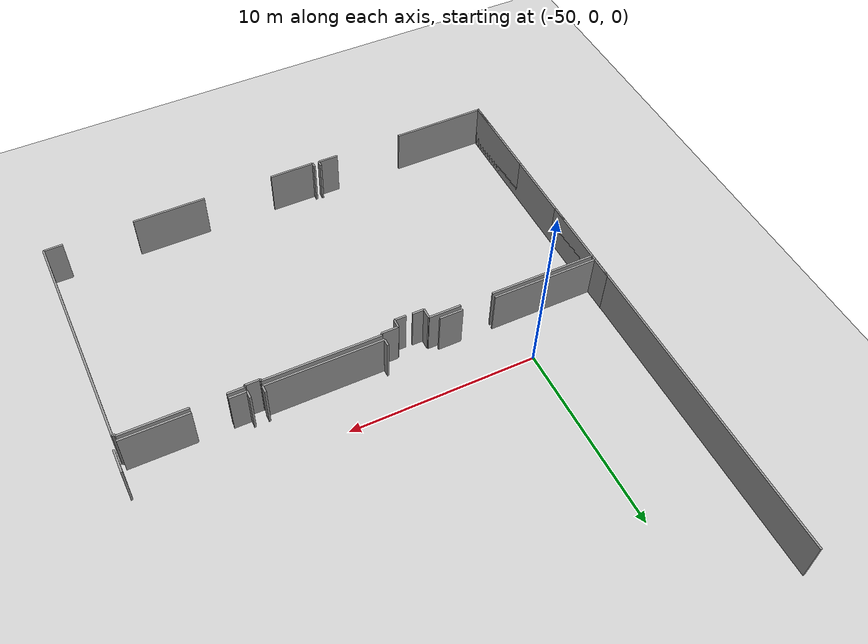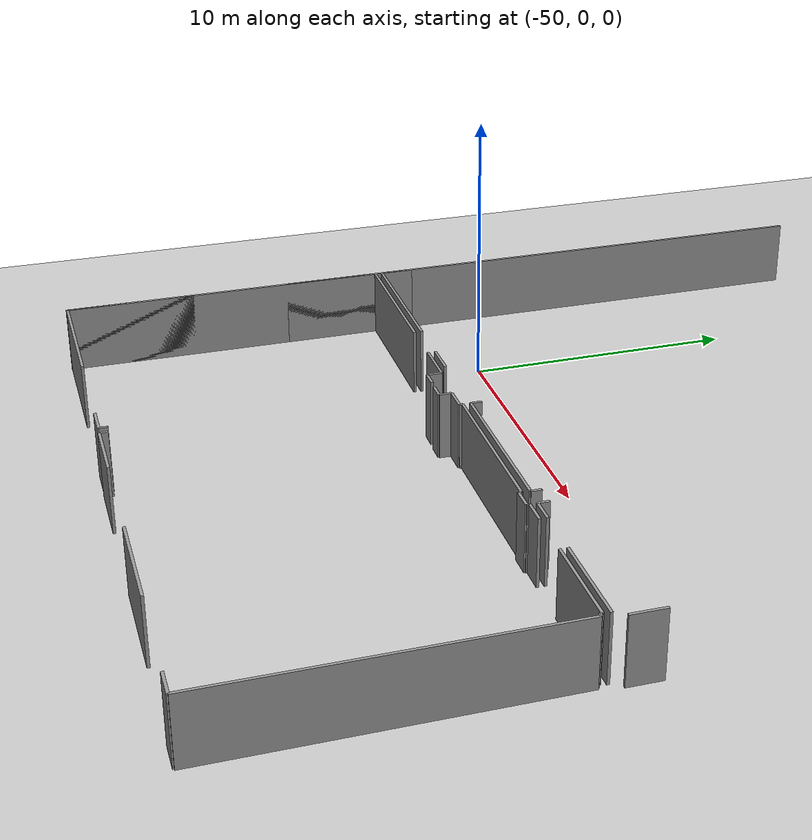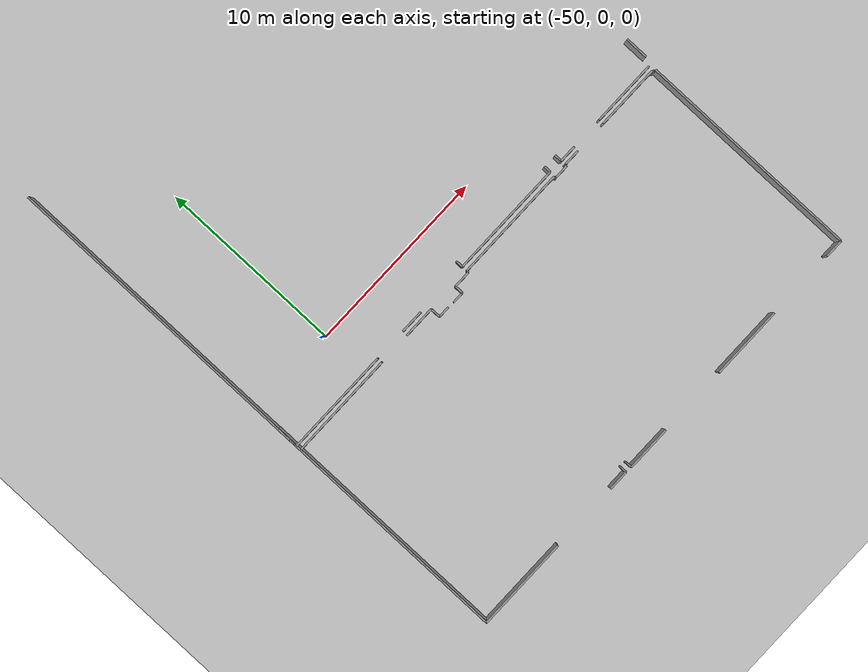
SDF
<sdf version="1.6">
 <world name="default">
  <model name="ground_plane">
   <static>1</static>
   <link name="link">
    <collision name="collision">
     <geometry><plane><normal>0 0 1</normal><size>100 100</size></plane></geometry>
     <surface><friction><ode><mu>100</mu><mu2>50</mu2></ode></friction></surface>
    </collision>
    <visual name="visual">
     <cast_shadows>0</cast_shadows>
     <geometry><plane><normal>0 0 1</normal><size>100 100</size></plane></geometry>
     <material>
      <script><uri>file://media/materials/scripts/gazebo.material</uri><name>Gazebo/Grey</name></script>
     </material>
    </visual>
   </link>
  </model>
  <model name="50056458">
   <static>1</static>
   <link name="Wall_21">
    <collision name="Wall_21_Collision">
     <geometry><box><size>0.998754944227 0.1 2.5</size></box></geometry>
     <pose>0.499377472113 0 1.25 0 0 0</pose>
    </collision>
    <visual name="Wall_21_Visual">
     <pose>0.499377472113 0 1.25 0 0 0</pose>
     <geometry><box><size>0.998754944227 0.1 2.5</size></box></geometry>
     <material>
      <script><uri>file://media/materials/scripts/gazebo.material</uri><name>Gazebo/Grey</name></script>
      <ambient>1 1 1 1</ambient>
     </material>
    </visual>
    <pose>24.9619283966 -30.0209203249 0 0 0 3.14159265359</pose>
   </link>
   <link name="Wall_22">
    <collision name="Wall_22_Collision">
     <geometry><box><size>3.88813131527 0.1 2.5</size></box></geometry>
     <pose>1.94406565764 0 1.25 0 0 0</pose>
    </collision>
    <visual name="Wall_22_Visual">
     <pose>1.94406565764 0 1.25 0 0 0</pose>
     <geometry><box><size>3.88813131527 0.1 2.5</size></box></geometry>
     <material>
      <script><uri>file://media/materials/scripts/gazebo.material</uri><name>Gazebo/Grey</name></script>
      <ambient>1 1 1 1</ambient>
     </material>
    </visual>
    <pose>20.2512132941 -30.0209203249 0 0 0 3.14159265359</pose>
   </link>
   <link name="Wall_23">
    <collision name="Wall_23_Collision">
     <geometry><box><size>2.43099257201 0.1 2.5</size></box></geometry>
     <pose>1.21549628601 0 1.25 0 0 0</pose>
    </collision>
    <visual name="Wall_23_Visual">
     <pose>1.21549628601 0 1.25 0 0 0</pose>
     <geometry><box><size>2.43099257201 0.1 2.5</size></box></geometry>
     <material>
      <script><uri>file://media/materials/scripts/gazebo.material</uri><name>Gazebo/Grey</name></script>
      <ambient>1 1 1 1</ambient>
     </material>
    </visual>
    <pose>12.6082647988 -30.0209203249 0 0 0 3.14159265359</pose>
   </link>
   <link name="Wall_24">
    <collision name="Wall_24_Collision">
     <geometry><box><size>0.296950036843 0.1 2.5</size></box></geometry>
     <pose>0.148475018422 0 1.25 0 0 0</pose>
    </collision>
    <visual name="Wall_24_Visual">
     <pose>0.148475018422 0 1.25 0 0 0</pose>
     <geometry><box><size>0.296950036843 0.1 2.5</size></box></geometry>
     <material>
      <script><uri>file://media/materials/scripts/gazebo.material</uri><name>Gazebo/Grey</name></script>
      <ambient>1 1 1 1</ambient>
     </material>
    </visual>
    <pose>10.1772722268 -30.0209203249 0 0 0 1.57079632679</pose>
   </link>
   <link name="Wall_25">
    <collision name="Wall_25_Collision">
     <geometry><box><size>0.616937840379 0.1 2.5</size></box></geometry>
     <pose>0.308468920189 0 1.25 0 0 0</pose>
    </collision>
    <visual name="Wall_25_Visual">
     <pose>0.308468920189 0 1.25 0 0 0</pose>
     <geometry><box><size>0.616937840379 0.1 2.5</size></box></geometry>
     <material>
      <script><uri>file://media/materials/scripts/gazebo.material</uri><name>Gazebo/Grey</name></script>
      <ambient>1 1 1 1</ambient>
     </material>
    </visual>
    <pose>10.1772722268 -18.4005691684 0 0 0 0.0</pose>
   </link>
   <link name="Wall_26">
    <collision name="Wall_26_Collision">
     <geometry><box><size>0.456689845596 0.1 2.5</size></box></geometry>
     <pose>0.228344922798 0 1.25 0 0 0</pose>
    </collision>
    <visual name="Wall_26_Visual">
     <pose>0.228344922798 0 1.25 0 0 0</pose>
     <geometry><box><size>0.456689845596 0.1 2.5</size></box></geometry>
     <material>
      <script><uri>file://media/materials/scripts/gazebo.material</uri><name>Gazebo/Grey</name></script>
      <ambient>1 1 1 1</ambient>
     </material>
    </visual>
    <pose>10.7942100672 -18.4005691684 0 0 0 1.57079632679</pose>
   </link>
   <link name="Wall_27">
    <collision name="Wall_27_Collision">
     <geometry><box><size>0.913210295849 0.1 2.5</size></box></geometry>
     <pose>0.456605147924 0 1.25 0 0 0</pose>
    </collision>
    <visual name="Wall_27_Visual">
     <pose>0.456605147924 0 1.25 0 0 0</pose>
     <geometry><box><size>0.913210295849 0.1 2.5</size></box></geometry>
     <material>
      <script><uri>file://media/materials/scripts/gazebo.material</uri><name>Gazebo/Grey</name></script>
      <ambient>1 1 1 1</ambient>
     </material>
    </visual>
    <pose>10.7942100672 -17.9438793228 0 0 0 0.0</pose>
   </link>
   <link name="Wall_28">
    <collision name="Wall_28_Collision">
     <geometry><box><size>0.111292740563 0.1 2.5</size></box></geometry>
     <pose>0.0556463702813 0 1.25 0 0 0</pose>
    </collision>
    <visual name="Wall_28_Visual">
     <pose>0.0556463702813 0 1.25 0 0 0</pose>
     <geometry><box><size>0.111292740563 0.1 2.5</size></box></geometry>
     <material>
      <script><uri>file://media/materials/scripts/gazebo.material</uri><name>Gazebo/Grey</name></script>
      <ambient>1 1 1 1</ambient>
     </material>
    </visual>
    <pose>11.707420363 -17.9438793228 0 0 0 1.57079632679</pose>
   </link>
   <link name="Wall_29">
    <collision name="Wall_29_Collision">
     <geometry><box><size>6.16954779913 0.1 2.5</size></box></geometry>
     <pose>3.08477389957 0 1.25 0 0 0</pose>
    </collision>
    <visual name="Wall_29_Visual">
     <pose>3.08477389957 0 1.25 0 0 0</pose>
     <geometry><box><size>6.16954779913 0.1 2.5</size></box></geometry>
     <material>
      <script><uri>file://media/materials/scripts/gazebo.material</uri><name>Gazebo/Grey</name></script>
      <ambient>1 1 1 1</ambient>
     </material>
    </visual>
    <pose>11.707420363 -17.8325865822 0 0 0 0.0</pose>
   </link>
   <link name="Wall_30">
    <collision name="Wall_30_Collision">
     <geometry><box><size>0.0948613922603 0.1 2.5</size></box></geometry>
     <pose>0.0474306961302 0 1.25 0 0 0</pose>
    </collision>
    <visual name="Wall_30_Visual">
     <pose>0.0474306961302 0 1.25 0 0 0</pose>
     <geometry><box><size>0.0948613922603 0.1 2.5</size></box></geometry>
     <material>
      <script><uri>file://media/materials/scripts/gazebo.material</uri><name>Gazebo/Grey</name></script>
      <ambient>1 1 1 1</ambient>
     </material>
    </visual>
    <pose>17.8769681621 -17.8325865822 0 0 0 -1.57079632679</pose>
   </link>
   <link name="Wall_31">
    <collision name="Wall_31_Collision">
     <geometry><box><size>0.774814300355 0.1 2.5</size></box></geometry>
     <pose>0.387407150177 0 1.25 0 0 0</pose>
    </collision>
    <visual name="Wall_31_Visual">
     <pose>0.387407150177 0 1.25 0 0 0</pose>
     <geometry><box><size>0.774814300355 0.1 2.5</size></box></geometry>
     <material>
      <script><uri>file://media/materials/scripts/gazebo.material</uri><name>Gazebo/Grey</name></script>
      <ambient>1 1 1 1</ambient>
     </material>
    </visual>
    <pose>17.8769681621 -17.9274479745 0 0 0 0.0</pose>
   </link>
   <link name="Wall_32">
    <collision name="Wall_32_Collision">
     <geometry><box><size>0.0968941363802 0.1 2.5</size></box></geometry>
     <pose>0.0484470681901 0 1.25 0 0 0</pose>
    </collision>
    <visual name="Wall_32_Visual">
     <pose>0.0484470681901 0 1.25 0 0 0</pose>
     <geometry><box><size>0.0968941363802 0.1 2.5</size></box></geometry>
     <material>
      <script><uri>file://media/materials/scripts/gazebo.material</uri><name>Gazebo/Grey</name></script>
      <ambient>1 1 1 1</ambient>
     </material>
    </visual>
    <pose>18.6517824625 -17.9274479745 0 0 0 1.57079632679</pose>
   </link>
   <link name="Wall_33">
    <collision name="Wall_33_Collision">
     <geometry><box><size>0.900675040443 0.1 2.5</size></box></geometry>
     <pose>0.450337520222 0 1.25 0 0 0</pose>
    </collision>
    <visual name="Wall_33_Visual">
     <pose>0.450337520222 0 1.25 0 0 0</pose>
     <geometry><box><size>0.900675040443 0.1 2.5</size></box></geometry>
     <material>
      <script><uri>file://media/materials/scripts/gazebo.material</uri><name>Gazebo/Grey</name></script>
      <ambient>1 1 1 1</ambient>
     </material>
    </visual>
    <pose>18.6517824625 -17.8305538381 0 0 0 0.0</pose>
   </link>
   <link name="Wall_34">
    <collision name="Wall_34_Collision">
     <geometry><box><size>3.47124937535 0.1 2.5</size></box></geometry>
     <pose>1.73562468768 0 1.25 0 0 0</pose>
    </collision>
    <visual name="Wall_34_Visual">
     <pose>1.73562468768 0 1.25 0 0 0</pose>
     <geometry><box><size>3.47124937535 0.1 2.5</size></box></geometry>
     <material>
      <script><uri>file://media/materials/scripts/gazebo.material</uri><name>Gazebo/Grey</name></script>
      <ambient>1 1 1 1</ambient>
     </material>
    </visual>
    <pose>21.3283982823 -17.8305538381 0 0 0 0.0</pose>
   </link>
   <link name="Wall_35">
    <collision name="Wall_35_Collision">
     <geometry><box><size>0.0858834390643 0.1 2.5</size></box></geometry>
     <pose>0.0429417195321 0 1.25 0 0 0</pose>
    </collision>
    <visual name="Wall_35_Visual">
     <pose>0.0429417195321 0 1.25 0 0 0</pose>
     <geometry><box><size>0.0858834390643 0.1 2.5</size></box></geometry>
     <material>
      <script><uri>file://media/materials/scripts/gazebo.material</uri><name>Gazebo/Grey</name></script>
      <ambient>1 1 1 1</ambient>
     </material>
    </visual>
    <pose>24.7996476577 -17.8305538381 0 0 0 -1.57079632679</pose>
   </link>
   <link name="Wall_36">
    <collision name="Wall_36_Collision">
     <geometry><box><size>0.126030135432 0.1 2.5</size></box></geometry>
     <pose>0.0630150677158 0 1.25 0 0 0</pose>
    </collision>
    <visual name="Wall_36_Visual">
     <pose>0.0630150677158 0 1.25 0 0 0</pose>
     <geometry><box><size>0.126030135432 0.1 2.5</size></box></geometry>
     <material>
      <script><uri>file://media/materials/scripts/gazebo.material</uri><name>Gazebo/Grey</name></script>
      <ambient>1 1 1 1</ambient>
     </material>
    </visual>
    <pose>24.7996476577 -17.9164372771 0 0 0 0.0</pose>
   </link>
   <link name="Wall_37">
    <collision name="Wall_37_Collision">
     <geometry><box><size>12.1045373294 0.1 2.5</size></box></geometry>
     <pose>6.05226866472 0 1.25 0 0 0</pose>
    </collision>
    <visual name="Wall_37_Visual">
     <pose>6.05226866472 0 1.25 0 0 0</pose>
     <geometry><box><size>12.1045373294 0.1 2.5</size></box></geometry>
     <material>
      <script><uri>file://media/materials/scripts/gazebo.material</uri><name>Gazebo/Grey</name></script>
      <ambient>1 1 1 1</ambient>
     </material>
    </visual>
    <pose>24.9256777931 -17.9164372771 0 0 0 -1.56780152768</pose>
   </link>
   <link name="Wall_38">
    <collision name="Wall_38_Collision">
     <geometry><box><size>1.08972024359 0.1 2.5</size></box></geometry>
     <pose>0.544860121795 0 1.25 0 0 0</pose>
    </collision>
    <visual name="Wall_38_Visual">
     <pose>0.544860121795 0 1.25 0 0 0</pose>
     <geometry><box><size>1.08972024359 0.1 2.5</size></box></geometry>
     <material>
      <script><uri>file://media/materials/scripts/gazebo.material</uri><name>Gazebo/Grey</name></script>
      <ambient>1 1 1 1</ambient>
     </material>
    </visual>
    <pose>9.82848721489 -29.9951722327 0 0 0 3.14159265359</pose>
   </link>
   <link name="Wall_39">
    <collision name="Wall_39_Collision">
     <geometry><box><size>5.02460467362 0.1 2.5</size></box></geometry>
     <pose>2.51230233681 0 1.25 0 0 0</pose>
    </collision>
    <visual name="Wall_39_Visual">
     <pose>2.51230233681 0 1.25 0 0 0</pose>
     <geometry><box><size>5.02460467362 0.1 2.5</size></box></geometry>
     <material>
      <script><uri>file://media/materials/scripts/gazebo.material</uri><name>Gazebo/Grey</name></script>
      <ambient>1 1 1 1</ambient>
     </material>
    </visual>
    <pose>5.02460467362 -29.9951722327 0 0 0 3.14159265359</pose>
   </link>
   <link name="Wall_40">
    <collision name="Wall_40_Collision">
     <geometry><box><size>4.83386551704 0.1 2.5</size></box></geometry>
     <pose>2.41693275852 0 1.25 0 0 0</pose>
    </collision>
    <visual name="Wall_40_Visual">
     <pose>2.41693275852 0 1.25 0 0 0</pose>
     <geometry><box><size>4.83386551704 0.1 2.5</size></box></geometry>
     <material>
      <script><uri>file://media/materials/scripts/gazebo.material</uri><name>Gazebo/Grey</name></script>
      <ambient>1 1 1 1</ambient>
     </material>
    </visual>
    <pose>0.0 -29.9951722327 0 0 0 1.57079632679</pose>
   </link>
   <link name="Wall_41">
    <collision name="Wall_41_Collision">
     <geometry><box><size>3.61896211473 0.1 2.5</size></box></geometry>
     <pose>1.80948105737 0 1.25 0 0 0</pose>
    </collision>
    <visual name="Wall_41_Visual">
     <pose>1.80948105737 0 1.25 0 0 0</pose>
     <geometry><box><size>3.61896211473 0.1 2.5</size></box></geometry>
     <material>
      <script><uri>file://media/materials/scripts/gazebo.material</uri><name>Gazebo/Grey</name></script>
      <ambient>1 1 1 1</ambient>
     </material>
    </visual>
    <pose>0.0 -21.4495159528 0 0 0 1.57079632679</pose>
   </link>
   <link name="Wall_42">
    <collision name="Wall_42_Collision">
     <geometry><box><size>5.73166083664 0.1 2.5</size></box></geometry>
     <pose>2.86583041832 0 1.25 0 0 0</pose>
    </collision>
    <visual name="Wall_42_Visual">
     <pose>2.86583041832 0 1.25 0 0 0</pose>
     <geometry><box><size>5.73166083664 0.1 2.5</size></box></geometry>
     <material>
      <script><uri>file://media/materials/scripts/gazebo.material</uri><name>Gazebo/Grey</name></script>
      <ambient>1 1 1 1</ambient>
     </material>
    </visual>
    <pose>0.0 -17.8305538381 0 0 0 0.0</pose>
   </link>
   <link name="Wall_43">
    <collision name="Wall_43_Collision">
     <geometry><box><size>1.72647733914 0.1 2.5</size></box></geometry>
     <pose>0.863238669569 0 1.25 0 0 0</pose>
    </collision>
    <visual name="Wall_43_Visual">
     <pose>0.863238669569 0 1.25 0 0 0</pose>
     <geometry><box><size>1.72647733914 0.1 2.5</size></box></geometry>
     <material>
      <script><uri>file://media/materials/scripts/gazebo.material</uri><name>Gazebo/Grey</name></script>
      <ambient>1 1 1 1</ambient>
     </material>
    </visual>
    <pose>7.48608840743 -17.8305538381 0 0 0 0.0</pose>
   </link>
   <link name="Wall_44">
    <collision name="Wall_44_Collision">
     <geometry><box><size>0.540709935884 0.1 2.5</size></box></geometry>
     <pose>0.270354967942 0 1.25 0 0 0</pose>
    </collision>
    <visual name="Wall_44_Visual">
     <pose>0.270354967942 0 1.25 0 0 0</pose>
     <geometry><box><size>0.540709935884 0.1 2.5</size></box></geometry>
     <material>
      <script><uri>file://media/materials/scripts/gazebo.material</uri><name>Gazebo/Grey</name></script>
      <ambient>1 1 1 1</ambient>
     </material>
    </visual>
    <pose>9.21256574657 -17.8305538381 0 0 0 -1.57079632679</pose>
   </link>
   <link name="Wall_45">
    <collision name="Wall_45_Collision">
     <geometry><box><size>0.621003328618 0.1 2.5</size></box></geometry>
     <pose>0.310501664309 0 1.25 0 0 0</pose>
    </collision>
    <visual name="Wall_45_Visual">
     <pose>0.310501664309 0 1.25 0 0 0</pose>
     <geometry><box><size>0.621003328618 0.1 2.5</size></box></geometry>
     <material>
      <script><uri>file://media/materials/scripts/gazebo.material</uri><name>Gazebo/Grey</name></script>
      <ambient>1 1 1 1</ambient>
     </material>
    </visual>
    <pose>9.21256574657 -18.371263774 0 0 0 0.0</pose>
   </link>
   <link name="Wall_46">
    <collision name="Wall_46_Collision">
     <geometry><box><size>0.313253213647 0.1 2.5</size></box></geometry>
     <pose>0.156626606823 0 1.25 0 0 0</pose>
    </collision>
    <visual name="Wall_46_Visual">
     <pose>0.156626606823 0 1.25 0 0 0</pose>
     <geometry><box><size>0.313253213647 0.1 2.5</size></box></geometry>
     <material>
      <script><uri>file://media/materials/scripts/gazebo.material</uri><name>Gazebo/Grey</name></script>
      <ambient>1 1 1 1</ambient>
     </material>
    </visual>
    <pose>9.83356907519 -29.6819602429 0 0 0 -1.58701988976</pose>
   </link>
   <link name="Wall_47">
    <collision name="Wall_47_Collision">
     <geometry><box><size>3.50614481608 0.1 2.5</size></box></geometry>
     <pose>1.75307240804 0 1.25 0 0 0</pose>
    </collision>
    <visual name="Wall_47_Visual">
     <pose>1.75307240804 0 1.25 0 0 0</pose>
     <geometry><box><size>3.50614481608 0.1 2.5</size></box></geometry>
     <material>
      <script><uri>file://media/materials/scripts/gazebo.material</uri><name>Gazebo/Grey</name></script>
      <ambient>1 1 1 1</ambient>
     </material>
    </visual>
    <pose>24.8406413308 -17.569007428 0 0 0 3.14159265359</pose>
   </link>
   <link name="Wall_48">
    <collision name="Wall_48_Collision">
     <geometry><box><size>0.922188249045 0.1 2.5</size></box></geometry>
     <pose>0.461094124523 0 1.25 0 0 0</pose>
    </collision>
    <visual name="Wall_48_Visual">
     <pose>0.461094124523 0 1.25 0 0 0</pose>
     <geometry><box><size>0.922188249045 0.1 2.5</size></box></geometry>
     <material>
      <script><uri>file://media/materials/scripts/gazebo.material</uri><name>Gazebo/Grey</name></script>
      <ambient>1 1 1 1</ambient>
     </material>
    </visual>
    <pose>19.5736319209 -17.569007428 0 0 0 3.14159265359</pose>
   </link>
   <link name="Wall_49">
    <collision name="Wall_49_Collision">
     <geometry><box><size>0.410275521526 0.1 2.5</size></box></geometry>
     <pose>0.205137760763 0 1.25 0 0 0</pose>
    </collision>
    <visual name="Wall_49_Visual">
     <pose>0.205137760763 0 1.25 0 0 0</pose>
     <geometry><box><size>0.410275521526 0.1 2.5</size></box></geometry>
     <material>
      <script><uri>file://media/materials/scripts/gazebo.material</uri><name>Gazebo/Grey</name></script>
      <ambient>1 1 1 1</ambient>
     </material>
    </visual>
    <pose>18.6514436718 -17.569007428 0 0 0 1.57079632679</pose>
   </link>
   <link name="Wall_51">
    <collision name="Wall_51_Collision">
     <geometry><box><size>0.384188638654 0.1 2.5</size></box></geometry>
     <pose>0.192094319327 0 1.25 0 0 0</pose>
    </collision>
    <visual name="Wall_51_Visual">
     <pose>0.192094319327 0 1.25 0 0 0</pose>
     <geometry><box><size>0.384188638654 0.1 2.5</size></box></geometry>
     <material>
      <script><uri>file://media/materials/scripts/gazebo.material</uri><name>Gazebo/Grey</name></script>
      <ambient>1 1 1 1</ambient>
     </material>
    </visual>
    <pose>17.908475696 -17.1587319065 0 0 0 -1.57079632679</pose>
   </link>
   <link name="Wall_52">
    <collision name="Wall_52_Collision">
     <geometry><box><size>6.19936137956 0.1 2.5</size></box></geometry>
     <pose>3.09968068978 0 1.25 0 0 0</pose>
    </collision>
    <visual name="Wall_52_Visual">
     <pose>3.09968068978 0 1.25 0 0 0</pose>
     <geometry><box><size>6.19936137956 0.1 2.5</size></box></geometry>
     <material>
      <script><uri>file://media/materials/scripts/gazebo.material</uri><name>Gazebo/Grey</name></script>
      <ambient>1 1 1 1</ambient>
     </material>
    </visual>
    <pose>17.908475696 -17.5429205451 0 0 0 3.14159265359</pose>
   </link>
   <link name="Wall_53">
    <collision name="Wall_53_Collision">
     <geometry><box><size>0.397062684747 0.1 2.5</size></box></geometry>
     <pose>0.198531342373 0 1.25 0 0 0</pose>
    </collision>
    <visual name="Wall_53_Visual">
     <pose>0.198531342373 0 1.25 0 0 0</pose>
     <geometry><box><size>0.397062684747 0.1 2.5</size></box></geometry>
     <material>
      <script><uri>file://media/materials/scripts/gazebo.material</uri><name>Gazebo/Grey</name></script>
      <ambient>1 1 1 1</ambient>
     </material>
    </visual>
    <pose>11.7091143164 -17.5429205451 0 0 0 1.57079632679</pose>
   </link>
   <link name="Wall_58">
    <collision name="Wall_58_Collision">
     <geometry><box><size>1.25911558691 0.1 2.5</size></box></geometry>
     <pose>0.629557793456 0 1.25 0 0 0</pose>
    </collision>
    <visual name="Wall_58_Visual">
     <pose>0.629557793456 0 1.25 0 0 0</pose>
     <geometry><box><size>1.25911558691 0.1 2.5</size></box></geometry>
     <material>
      <script><uri>file://media/materials/scripts/gazebo.material</uri><name>Gazebo/Grey</name></script>
      <ambient>1 1 1 1</ambient>
     </material>
    </visual>
    <pose>8.76315990073 -17.5593518934 0 0 0 3.14159265359</pose>
   </link>
   <link name="Wall_59">
    <collision name="Wall_59_Collision">
     <geometry><box><size>5.72742595306 0.1 2.5</size></box></geometry>
     <pose>2.86371297653 0 1.25 0 0 0</pose>
    </collision>
    <visual name="Wall_59_Visual">
     <pose>2.86371297653 0 1.25 0 0 0</pose>
     <geometry><box><size>5.72742595306 0.1 2.5</size></box></geometry>
     <material>
      <script><uri>file://media/materials/scripts/gazebo.material</uri><name>Gazebo/Grey</name></script>
      <ambient>1 1 1 1</ambient>
     </material>
    </visual>
    <pose>5.73742027832 -17.5593518934 0 0 0 3.14159265359</pose>
   </link>
   <link name="Wall_60">
    <collision name="Wall_60_Collision">
     <geometry><box><size>1.2215098207 0.1 2.5</size></box></geometry>
     <pose>0.610754910348 0 1.25 0 0 0</pose>
    </collision>
    <visual name="Wall_60_Visual">
     <pose>0.610754910348 0 1.25 0 0 0</pose>
     <geometry><box><size>1.2215098207 0.1 2.5</size></box></geometry>
     <material>
      <script><uri>file://media/materials/scripts/gazebo.material</uri><name>Gazebo/Grey</name></script>
      <ambient>1 1 1 1</ambient>
     </material>
    </visual>
    <pose>0.009994325256 -17.5593518934 0 0 0 1.57079632679</pose>
   </link>
   <link name="Wall_79">
    <collision name="Wall_79_Collision">
     <geometry><box><size>1.249290657 0.1 2.5</size></box></geometry>
     <pose>0.6246453285 0 1.25 0 0 0</pose>
    </collision>
    <visual name="Wall_79_Visual">
     <pose>0.6246453285 0 1.25 0 0 0</pose>
     <geometry><box><size>1.249290657 0.1 2.5</size></box></geometry>
     <material>
      <script><uri>file://media/materials/scripts/gazebo.material</uri><name>Gazebo/Grey</name></script>
      <ambient>1 1 1 1</ambient>
     </material>
    </visual>
    <pose>25.0730517418 -17.1719447432 0 0 0 1.57079632679</pose>
   </link>
   <link name="Wall_295">
    <collision name="Wall_295_Collision">
     <geometry><box><size>30.0509033007 0.1 2.5</size></box></geometry>
     <pose>15.0254516503 0 1.25 0 0 0</pose>
    </collision>
    <visual name="Wall_295_Visual">
     <pose>15.0254516503 0 1.25 0 0 0</pose>
     <geometry><box><size>30.0509033007 0.1 2.5</size></box></geometry>
     <material>
      <script><uri>file://media/materials/scripts/gazebo.material</uri><name>Gazebo/Grey</name></script>
      <ambient>1 1 1 1</ambient>
     </material>
    </visual>
    <pose>0.0 -30.0509033007 0 0 0 1.57079632679</pose>
   </link>
   <pose>-54.75 15.0009033007 0 0 0 0</pose>
  </model>
 </world>
</sdf>
